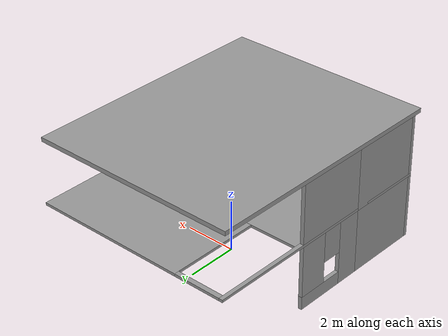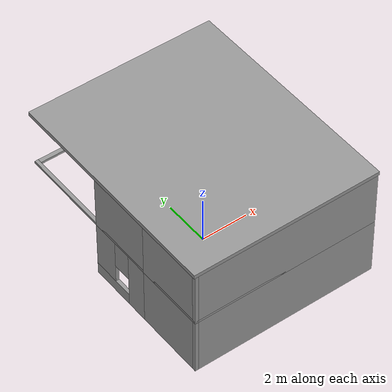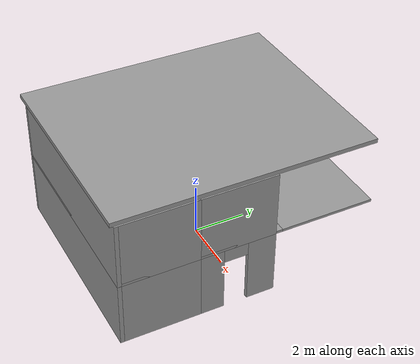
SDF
<sdf version="1.6">
 <model name="testbuilding">
  <link name="Floor_0">
   <pose>0 0 2.5 0 -0 0</pose>
   <visual name="Floor_0_Visual_0">
    <pose>-3.92368 0 0.05 0 -0 0</pose>
    <geometry><box><size>0.152649 9.7 0.1</size></box></geometry>
    <material>
     <script><uri>file://media/materials/scripts/gazebo.material</uri><name>Gazebo/Grey</name></script>
     <ambient>1 1 1 1</ambient>
    </material>
    <meta><layer>1</layer></meta>
   </visual>
   <visual name="Floor_0_Visual_1">
    <pose>0.076324 -1.8001 0.05 0 -0 0</pose>
    <geometry><box><size>7.84735 6.0998 0.1</size></box></geometry>
    <material>
     <script><uri>file://media/materials/scripts/gazebo.material</uri><name>Gazebo/Grey</name></script>
     <ambient>1 1 1 1</ambient>
    </material>
    <meta><layer>1</layer></meta>
   </visual>
   <visual name="Floor_0_Visual_2">
    <pose>1.00217 3.0499 0.05 0 -0 0</pose>
    <geometry><box><size>5.99566 3.6002 0.1</size></box></geometry>
    <material>
     <script><uri>file://media/materials/scripts/gazebo.material</uri><name>Gazebo/Grey</name></script>
     <ambient>1 1 1 1</ambient>
    </material>
    <meta><layer>1</layer></meta>
   </visual>
   <visual name="Floor_0_Visual_3">
    <pose>-2.92151 4.75618 0.05 0 -0 0</pose>
    <geometry><box><size>1.85169 0.187632 0.1</size></box></geometry>
    <material>
     <script><uri>file://media/materials/scripts/gazebo.material</uri><name>Gazebo/Grey</name></script>
     <ambient>1 1 1 1</ambient>
    </material>
    <meta><layer>1</layer></meta>
   </visual>
   <collision name="Floor_0_Collision_0">
    <pose>-3.92368 0 0.05 0 -0 0</pose>
    <geometry><box><size>0.152649 9.7 0.1</size></box></geometry>
    <surface>
     <friction>
      <ode><mu>1</mu><mu2>1</mu2><fdir1>0 0 0</fdir1><slip1>0</slip1><slip2>0</slip2></ode>
      <torsional>
       <coefficient>1</coefficient>
       <patch_radius>0</patch_radius>
       <surface_radius>0</surface_radius>
       <use_patch_radius>1</use_patch_radius>
       <ode><slip>0</slip></ode>
      </torsional>
     </friction>
     <bounce><restitution_coefficient>0</restitution_coefficient><threshold>1e+06</threshold></bounce>
     <contact>
      <collide_without_contact>0</collide_without_contact>
      <collide_without_contact_bitmask>1</collide_without_contact_bitmask>
      <collide_bitmask>1</collide_bitmask>
      <ode>
       <soft_cfm>0</soft_cfm>
       <soft_erp>0.2</soft_erp>
       <kp>1e+13</kp>
       <kd>1</kd>
       <max_vel>0.01</max_vel>
       <min_depth>0</min_depth>
      </ode>
      <bullet>
       <split_impulse>1</split_impulse>
       <split_impulse_penetration_threshold>-0.01</split_impulse_penetration_threshold>
       <soft_cfm>0</soft_cfm>
       <soft_erp>0.2</soft_erp>
       <kp>1e+13</kp>
       <kd>1</kd>
      </bullet>
     </contact>
    </surface>
   </collision>
   <collision name="Floor_0_Collision_1">
    <pose>0.076324 -1.8001 0.05 0 -0 0</pose>
    <geometry><box><size>7.84735 6.0998 0.1</size></box></geometry>
    <surface>
     <friction>
      <ode><mu>1</mu><mu2>1</mu2><fdir1>0 0 0</fdir1><slip1>0</slip1><slip2>0</slip2></ode>
      <torsional>
       <coefficient>1</coefficient>
       <patch_radius>0</patch_radius>
       <surface_radius>0</surface_radius>
       <use_patch_radius>1</use_patch_radius>
       <ode><slip>0</slip></ode>
      </torsional>
     </friction>
     <bounce><restitution_coefficient>0</restitution_coefficient><threshold>1e+06</threshold></bounce>
     <contact>
      <collide_without_contact>0</collide_without_contact>
      <collide_without_contact_bitmask>1</collide_without_contact_bitmask>
      <collide_bitmask>1</collide_bitmask>
      <ode>
       <soft_cfm>0</soft_cfm>
       <soft_erp>0.2</soft_erp>
       <kp>1e+13</kp>
       <kd>1</kd>
       <max_vel>0.01</max_vel>
       <min_depth>0</min_depth>
      </ode>
      <bullet>
       <split_impulse>1</split_impulse>
       <split_impulse_penetration_threshold>-0.01</split_impulse_penetration_threshold>
       <soft_cfm>0</soft_cfm>
       <soft_erp>0.2</soft_erp>
       <kp>1e+13</kp>
       <kd>1</kd>
      </bullet>
     </contact>
    </surface>
   </collision>
   <collision name="Floor_0_Collision_2">
    <pose>1.00217 3.0499 0.05 0 -0 0</pose>
    <geometry><box><size>5.99566 3.6002 0.1</size></box></geometry>
    <surface>
     <friction>
      <ode><mu>1</mu><mu2>1</mu2><fdir1>0 0 0</fdir1><slip1>0</slip1><slip2>0</slip2></ode>
      <torsional>
       <coefficient>1</coefficient>
       <patch_radius>0</patch_radius>
       <surface_radius>0</surface_radius>
       <use_patch_radius>1</use_patch_radius>
       <ode><slip>0</slip></ode>
      </torsional>
     </friction>
     <bounce><restitution_coefficient>0</restitution_coefficient><threshold>1e+06</threshold></bounce>
     <contact>
      <collide_without_contact>0</collide_without_contact>
      <collide_without_contact_bitmask>1</collide_without_contact_bitmask>
      <collide_bitmask>1</collide_bitmask>
      <ode>
       <soft_cfm>0</soft_cfm>
       <soft_erp>0.2</soft_erp>
       <kp>1e+13</kp>
       <kd>1</kd>
       <max_vel>0.01</max_vel>
       <min_depth>0</min_depth>
      </ode>
      <bullet>
       <split_impulse>1</split_impulse>
       <split_impulse_penetration_threshold>-0.01</split_impulse_penetration_threshold>
       <soft_cfm>0</soft_cfm>
       <soft_erp>0.2</soft_erp>
       <kp>1e+13</kp>
       <kd>1</kd>
      </bullet>
     </contact>
    </surface>
   </collision>
   <collision name="Floor_0_Collision_3">
    <pose>-2.92151 4.75618 0.05 0 -0 0</pose>
    <geometry><box><size>1.85169 0.187632 0.1</size></box></geometry>
    <surface>
     <friction>
      <ode><mu>1</mu><mu2>1</mu2><fdir1>0 0 0</fdir1><slip1>0</slip1><slip2>0</slip2></ode>
      <torsional>
       <coefficient>1</coefficient>
       <patch_radius>0</patch_radius>
       <surface_radius>0</surface_radius>
       <use_patch_radius>1</use_patch_radius>
       <ode><slip>0</slip></ode>
      </torsional>
     </friction>
     <bounce><restitution_coefficient>0</restitution_coefficient><threshold>1e+06</threshold></bounce>
     <contact>
      <collide_without_contact>0</collide_without_contact>
      <collide_without_contact_bitmask>1</collide_without_contact_bitmask>
      <collide_bitmask>1</collide_bitmask>
      <ode>
       <soft_cfm>0</soft_cfm>
       <soft_erp>0.2</soft_erp>
       <kp>1e+13</kp>
       <kd>1</kd>
       <max_vel>0.01</max_vel>
       <min_depth>0</min_depth>
      </ode>
      <bullet>
       <split_impulse>1</split_impulse>
       <split_impulse_penetration_threshold>-0.01</split_impulse_penetration_threshold>
       <soft_cfm>0</soft_cfm>
       <soft_erp>0.2</soft_erp>
       <kp>1e+13</kp>
       <kd>1</kd>
      </bullet>
     </contact>
    </surface>
   </collision>
  </link>
  <link name="Wall_1">
   <pose>3.925 -0.5 0 0 0 -1.5708</pose>
   <visual name="Wall_1_Visual_0">
    <pose>-0.962843 0 1.25 0 -0 0</pose>
    <geometry><box><size>1.07431 0.15 2.5</size></box></geometry>
    <material>
     <script><uri>file://media/materials/scripts/gazebo.material</uri><name>Gazebo/Grey</name></script>
     <ambient>1 1 1 1</ambient>
    </material>
    <meta><layer>0</layer></meta>
   </visual>
   <visual name="Wall_1_Visual_1">
    <pose>0.987157 0 1.25 0 -0 0</pose>
    <geometry><box><size>1.02569 0.15 2.5</size></box></geometry>
    <material>
     <script><uri>file://media/materials/scripts/gazebo.material</uri><name>Gazebo/Grey</name></script>
     <ambient>1 1 1 1</ambient>
    </material>
    <meta><layer>0</layer></meta>
   </visual>
   <visual name="Wall_1_Visual_2">
    <pose>0.024314 0 2.25 0 -0 0</pose>
    <geometry><box><size>0.9 0.15 0.5</size></box></geometry>
    <material>
     <script><uri>file://media/materials/scripts/gazebo.material</uri><name>Gazebo/Grey</name></script>
     <ambient>1 1 1 1</ambient>
    </material>
    <meta><layer>0</layer></meta>
   </visual>
   <collision name="Wall_1_Collision_0">
    <pose>-0.962843 0 1.25 0 -0 0</pose>
    <geometry><box><size>1.07431 0.15 2.5</size></box></geometry>
    <surface>
     <friction>
      <ode><mu>1</mu><mu2>1</mu2><fdir1>0 0 0</fdir1><slip1>0</slip1><slip2>0</slip2></ode>
      <torsional>
       <coefficient>1</coefficient>
       <patch_radius>0</patch_radius>
       <surface_radius>0</surface_radius>
       <use_patch_radius>1</use_patch_radius>
       <ode><slip>0</slip></ode>
      </torsional>
     </friction>
     <bounce><restitution_coefficient>0</restitution_coefficient><threshold>1e+06</threshold></bounce>
     <contact>
      <collide_without_contact>0</collide_without_contact>
      <collide_without_contact_bitmask>1</collide_without_contact_bitmask>
      <collide_bitmask>1</collide_bitmask>
      <ode>
       <soft_cfm>0</soft_cfm>
       <soft_erp>0.2</soft_erp>
       <kp>1e+13</kp>
       <kd>1</kd>
       <max_vel>0.01</max_vel>
       <min_depth>0</min_depth>
      </ode>
      <bullet>
       <split_impulse>1</split_impulse>
       <split_impulse_penetration_threshold>-0.01</split_impulse_penetration_threshold>
       <soft_cfm>0</soft_cfm>
       <soft_erp>0.2</soft_erp>
       <kp>1e+13</kp>
       <kd>1</kd>
      </bullet>
     </contact>
    </surface>
   </collision>
   <collision name="Wall_1_Collision_1">
    <pose>0.987157 0 1.25 0 -0 0</pose>
    <geometry><box><size>1.02569 0.15 2.5</size></box></geometry>
    <surface>
     <friction>
      <ode><mu>1</mu><mu2>1</mu2><fdir1>0 0 0</fdir1><slip1>0</slip1><slip2>0</slip2></ode>
      <torsional>
       <coefficient>1</coefficient>
       <patch_radius>0</patch_radius>
       <surface_radius>0</surface_radius>
       <use_patch_radius>1</use_patch_radius>
       <ode><slip>0</slip></ode>
      </torsional>
     </friction>
     <bounce><restitution_coefficient>0</restitution_coefficient><threshold>1e+06</threshold></bounce>
     <contact>
      <collide_without_contact>0</collide_without_contact>
      <collide_without_contact_bitmask>1</collide_without_contact_bitmask>
      <collide_bitmask>1</collide_bitmask>
      <ode>
       <soft_cfm>0</soft_cfm>
       <soft_erp>0.2</soft_erp>
       <kp>1e+13</kp>
       <kd>1</kd>
       <max_vel>0.01</max_vel>
       <min_depth>0</min_depth>
      </ode>
      <bullet>
       <split_impulse>1</split_impulse>
       <split_impulse_penetration_threshold>-0.01</split_impulse_penetration_threshold>
       <soft_cfm>0</soft_cfm>
       <soft_erp>0.2</soft_erp>
       <kp>1e+13</kp>
       <kd>1</kd>
      </bullet>
     </contact>
    </surface>
   </collision>
   <collision name="Wall_1_Collision_2">
    <pose>0.024314 0 2.25 0 -0 0</pose>
    <geometry><box><size>0.9 0.15 0.5</size></box></geometry>
    <surface>
     <friction>
      <ode><mu>1</mu><mu2>1</mu2><fdir1>0 0 0</fdir1><slip1>0</slip1><slip2>0</slip2></ode>
      <torsional>
       <coefficient>1</coefficient>
       <patch_radius>0</patch_radius>
       <surface_radius>0</surface_radius>
       <use_patch_radius>1</use_patch_radius>
       <ode><slip>0</slip></ode>
      </torsional>
     </friction>
     <bounce><restitution_coefficient>0</restitution_coefficient><threshold>1e+06</threshold></bounce>
     <contact>
      <collide_without_contact>0</collide_without_contact>
      <collide_without_contact_bitmask>1</collide_without_contact_bitmask>
      <collide_bitmask>1</collide_bitmask>
      <ode>
       <soft_cfm>0</soft_cfm>
       <soft_erp>0.2</soft_erp>
       <kp>1e+13</kp>
       <kd>1</kd>
       <max_vel>0.01</max_vel>
       <min_depth>0</min_depth>
      </ode>
      <bullet>
       <split_impulse>1</split_impulse>
       <split_impulse_penetration_threshold>-0.01</split_impulse_penetration_threshold>
       <soft_cfm>0</soft_cfm>
       <soft_erp>0.2</soft_erp>
       <kp>1e+13</kp>
       <kd>1</kd>
      </bullet>
     </contact>
    </surface>
   </collision>
  </link>
  <link name="Wall_17">
   <pose>3.925 -3.35 0 0 0 -1.5708</pose>
   <visual name="Wall_17_Visual">
    <pose>0 0 1.25 0 -0 0</pose>
    <geometry><box><size>3 0.15 2.5</size></box></geometry>
    <material>
     <script><uri>file://media/materials/scripts/gazebo.material</uri><name>Gazebo/Grey</name></script>
     <ambient>1 1 1 1</ambient>
    </material>
    <meta><layer>0</layer></meta>
   </visual>
   <collision name="Wall_17_Collision">
    <pose>0 0 1.25 0 -0 0</pose>
    <geometry><box><size>3 0.15 2.5</size></box></geometry>
    <surface>
     <friction>
      <ode><mu>1</mu><mu2>1</mu2><fdir1>0 0 0</fdir1><slip1>0</slip1><slip2>0</slip2></ode>
      <torsional>
       <coefficient>1</coefficient>
       <patch_radius>0</patch_radius>
       <surface_radius>0</surface_radius>
       <use_patch_radius>1</use_patch_radius>
       <ode><slip>0</slip></ode>
      </torsional>
     </friction>
     <bounce><restitution_coefficient>0</restitution_coefficient><threshold>1e+06</threshold></bounce>
     <contact>
      <collide_without_contact>0</collide_without_contact>
      <collide_without_contact_bitmask>1</collide_without_contact_bitmask>
      <collide_bitmask>1</collide_bitmask>
      <ode>
       <soft_cfm>0</soft_cfm>
       <soft_erp>0.2</soft_erp>
       <kp>1e+13</kp>
       <kd>1</kd>
       <max_vel>0.01</max_vel>
       <min_depth>0</min_depth>
      </ode>
      <bullet>
       <split_impulse>1</split_impulse>
       <split_impulse_penetration_threshold>-0.01</split_impulse_penetration_threshold>
       <soft_cfm>0</soft_cfm>
       <soft_erp>0.2</soft_erp>
       <kp>1e+13</kp>
       <kd>1</kd>
      </bullet>
     </contact>
    </surface>
   </collision>
  </link>
  <link name="Wall_18">
   <pose>0 -4.775 0 0 -0 3.14159</pose>
   <visual name="Wall_18_Visual">
    <pose>0 0 1.25 0 -0 0</pose>
    <geometry><box><size>8 0.15 2.5</size></box></geometry>
    <material>
     <script><uri>file://media/materials/scripts/gazebo.material</uri><name>Gazebo/Grey</name></script>
     <ambient>1 1 1 1</ambient>
    </material>
    <meta><layer>0</layer></meta>
   </visual>
   <collision name="Wall_18_Collision">
    <pose>0 0 1.25 0 -0 0</pose>
    <geometry><box><size>8 0.15 2.5</size></box></geometry>
    <surface>
     <friction>
      <ode><mu>1</mu><mu2>1</mu2><fdir1>0 0 0</fdir1><slip1>0</slip1><slip2>0</slip2></ode>
      <torsional>
       <coefficient>1</coefficient>
       <patch_radius>0</patch_radius>
       <surface_radius>0</surface_radius>
       <use_patch_radius>1</use_patch_radius>
       <ode><slip>0</slip></ode>
      </torsional>
     </friction>
     <bounce><restitution_coefficient>0</restitution_coefficient><threshold>1e+06</threshold></bounce>
     <contact>
      <collide_without_contact>0</collide_without_contact>
      <collide_without_contact_bitmask>1</collide_without_contact_bitmask>
      <collide_bitmask>1</collide_bitmask>
      <ode>
       <soft_cfm>0</soft_cfm>
       <soft_erp>0.2</soft_erp>
       <kp>1e+13</kp>
       <kd>1</kd>
       <max_vel>0.01</max_vel>
       <min_depth>0</min_depth>
      </ode>
      <bullet>
       <split_impulse>1</split_impulse>
       <split_impulse_penetration_threshold>-0.01</split_impulse_penetration_threshold>
       <soft_cfm>0</soft_cfm>
       <soft_erp>0.2</soft_erp>
       <kp>1e+13</kp>
       <kd>1</kd>
      </bullet>
     </contact>
    </surface>
   </collision>
  </link>
  <link name="Wall_19">
   <pose>-3.925 -3.35 0 0 -0 1.5708</pose>
   <visual name="Wall_19_Visual">
    <pose>0 0 1.25 0 -0 0</pose>
    <geometry><box><size>3 0.15 2.5</size></box></geometry>
    <material>
     <script><uri>file://media/materials/scripts/gazebo.material</uri><name>Gazebo/Grey</name></script>
     <ambient>1 1 1 1</ambient>
    </material>
    <meta><layer>0</layer></meta>
   </visual>
   <collision name="Wall_19_Collision">
    <pose>0 0 1.25 0 -0 0</pose>
    <geometry><box><size>3 0.15 2.5</size></box></geometry>
    <surface>
     <friction>
      <ode><mu>1</mu><mu2>1</mu2><fdir1>0 0 0</fdir1><slip1>0</slip1><slip2>0</slip2></ode>
      <torsional>
       <coefficient>1</coefficient>
       <patch_radius>0</patch_radius>
       <surface_radius>0</surface_radius>
       <use_patch_radius>1</use_patch_radius>
       <ode><slip>0</slip></ode>
      </torsional>
     </friction>
     <bounce><restitution_coefficient>0</restitution_coefficient><threshold>1e+06</threshold></bounce>
     <contact>
      <collide_without_contact>0</collide_without_contact>
      <collide_without_contact_bitmask>1</collide_without_contact_bitmask>
      <collide_bitmask>1</collide_bitmask>
      <ode>
       <soft_cfm>0</soft_cfm>
       <soft_erp>0.2</soft_erp>
       <kp>1e+13</kp>
       <kd>1</kd>
       <max_vel>0.01</max_vel>
       <min_depth>0</min_depth>
      </ode>
      <bullet>
       <split_impulse>1</split_impulse>
       <split_impulse_penetration_threshold>-0.01</split_impulse_penetration_threshold>
       <soft_cfm>0</soft_cfm>
       <soft_erp>0.2</soft_erp>
       <kp>1e+13</kp>
       <kd>1</kd>
      </bullet>
     </contact>
    </surface>
   </collision>
  </link>
  <link name="Wall_2">
   <pose>0 -1.925 0 0 -0 3.14159</pose>
   <visual name="Wall_2_Visual_0">
    <pose>-0.699968 0 1.25 0 -0 0</pose>
    <geometry><box><size>6.60006 0.15 2.5</size></box></geometry>
    <material>
     <script><uri>file://media/materials/scripts/gazebo.material</uri><name>Gazebo/Grey</name></script>
     <ambient>1 1 1 1</ambient>
    </material>
    <meta><layer>0</layer></meta>
   </visual>
   <visual name="Wall_2_Visual_1">
    <pose>3.75003 0 1.25 0 -0 0</pose>
    <geometry><box><size>0.499937 0.15 2.5</size></box></geometry>
    <material>
     <script><uri>file://media/materials/scripts/gazebo.material</uri><name>Gazebo/Grey</name></script>
     <ambient>1 1 1 1</ambient>
    </material>
    <meta><layer>0</layer></meta>
   </visual>
   <visual name="Wall_2_Visual_2">
    <pose>3.05006 0 2.25 0 -0 0</pose>
    <geometry><box><size>0.9 0.15 0.5</size></box></geometry>
    <material>
     <script><uri>file://media/materials/scripts/gazebo.material</uri><name>Gazebo/Grey</name></script>
     <ambient>1 1 1 1</ambient>
    </material>
    <meta><layer>0</layer></meta>
   </visual>
   <collision name="Wall_2_Collision_0">
    <pose>-0.699968 0 1.25 0 -0 0</pose>
    <geometry><box><size>6.60006 0.15 2.5</size></box></geometry>
    <surface>
     <friction>
      <ode><mu>1</mu><mu2>1</mu2><fdir1>0 0 0</fdir1><slip1>0</slip1><slip2>0</slip2></ode>
      <torsional>
       <coefficient>1</coefficient>
       <patch_radius>0</patch_radius>
       <surface_radius>0</surface_radius>
       <use_patch_radius>1</use_patch_radius>
       <ode><slip>0</slip></ode>
      </torsional>
     </friction>
     <bounce><restitution_coefficient>0</restitution_coefficient><threshold>1e+06</threshold></bounce>
     <contact>
      <collide_without_contact>0</collide_without_contact>
      <collide_without_contact_bitmask>1</collide_without_contact_bitmask>
      <collide_bitmask>1</collide_bitmask>
      <ode>
       <soft_cfm>0</soft_cfm>
       <soft_erp>0.2</soft_erp>
       <kp>1e+13</kp>
       <kd>1</kd>
       <max_vel>0.01</max_vel>
       <min_depth>0</min_depth>
      </ode>
      <bullet>
       <split_impulse>1</split_impulse>
       <split_impulse_penetration_threshold>-0.01</split_impulse_penetration_threshold>
       <soft_cfm>0</soft_cfm>
       <soft_erp>0.2</soft_erp>
       <kp>1e+13</kp>
       <kd>1</kd>
      </bullet>
     </contact>
    </surface>
   </collision>
   <collision name="Wall_2_Collision_1">
    <pose>3.75003 0 1.25 0 -0 0</pose>
    <geometry><box><size>0.499937 0.15 2.5</size></box></geometry>
    <surface>
     <friction>
      <ode><mu>1</mu><mu2>1</mu2><fdir1>0 0 0</fdir1><slip1>0</slip1><slip2>0</slip2></ode>
      <torsional>
       <coefficient>1</coefficient>
       <patch_radius>0</patch_radius>
       <surface_radius>0</surface_radius>
       <use_patch_radius>1</use_patch_radius>
       <ode><slip>0</slip></ode>
      </torsional>
     </friction>
     <bounce><restitution_coefficient>0</restitution_coefficient><threshold>1e+06</threshold></bounce>
     <contact>
      <collide_without_contact>0</collide_without_contact>
      <collide_without_contact_bitmask>1</collide_without_contact_bitmask>
      <collide_bitmask>1</collide_bitmask>
      <ode>
       <soft_cfm>0</soft_cfm>
       <soft_erp>0.2</soft_erp>
       <kp>1e+13</kp>
       <kd>1</kd>
       <max_vel>0.01</max_vel>
       <min_depth>0</min_depth>
      </ode>
      <bullet>
       <split_impulse>1</split_impulse>
       <split_impulse_penetration_threshold>-0.01</split_impulse_penetration_threshold>
       <soft_cfm>0</soft_cfm>
       <soft_erp>0.2</soft_erp>
       <kp>1e+13</kp>
       <kd>1</kd>
      </bullet>
     </contact>
    </surface>
   </collision>
   <collision name="Wall_2_Collision_2">
    <pose>3.05006 0 2.25 0 -0 0</pose>
    <geometry><box><size>0.9 0.15 0.5</size></box></geometry>
    <surface>
     <friction>
      <ode><mu>1</mu><mu2>1</mu2><fdir1>0 0 0</fdir1><slip1>0</slip1><slip2>0</slip2></ode>
      <torsional>
       <coefficient>1</coefficient>
       <patch_radius>0</patch_radius>
       <surface_radius>0</surface_radius>
       <use_patch_radius>1</use_patch_radius>
       <ode><slip>0</slip></ode>
      </torsional>
     </friction>
     <bounce><restitution_coefficient>0</restitution_coefficient><threshold>1e+06</threshold></bounce>
     <contact>
      <collide_without_contact>0</collide_without_contact>
      <collide_without_contact_bitmask>1</collide_without_contact_bitmask>
      <collide_bitmask>1</collide_bitmask>
      <ode>
       <soft_cfm>0</soft_cfm>
       <soft_erp>0.2</soft_erp>
       <kp>1e+13</kp>
       <kd>1</kd>
       <max_vel>0.01</max_vel>
       <min_depth>0</min_depth>
      </ode>
      <bullet>
       <split_impulse>1</split_impulse>
       <split_impulse_penetration_threshold>-0.01</split_impulse_penetration_threshold>
       <soft_cfm>0</soft_cfm>
       <soft_erp>0.2</soft_erp>
       <kp>1e+13</kp>
       <kd>1</kd>
      </bullet>
     </contact>
    </surface>
   </collision>
  </link>
  <link name="Wall_22">
   <pose>3.925 -0.5 2.5 0 0 -1.5708</pose>
   <visual name="Wall_22_Visual">
    <pose>0 0 1.25 0 -0 0</pose>
    <geometry><box><size>3 0.15 2.5</size></box></geometry>
    <material>
     <script><uri>file://media/materials/scripts/gazebo.material</uri><name>Gazebo/Grey</name></script>
     <ambient>1 1 1 1</ambient>
    </material>
    <meta><layer>1</layer></meta>
   </visual>
   <collision name="Wall_22_Collision">
    <pose>0 0 1.25 0 -0 0</pose>
    <geometry><box><size>3 0.15 2.5</size></box></geometry>
    <surface>
     <friction>
      <ode><mu>1</mu><mu2>1</mu2><fdir1>0 0 0</fdir1><slip1>0</slip1><slip2>0</slip2></ode>
      <torsional>
       <coefficient>1</coefficient>
       <patch_radius>0</patch_radius>
       <surface_radius>0</surface_radius>
       <use_patch_radius>1</use_patch_radius>
       <ode><slip>0</slip></ode>
      </torsional>
     </friction>
     <bounce><restitution_coefficient>0</restitution_coefficient><threshold>1e+06</threshold></bounce>
     <contact>
      <collide_without_contact>0</collide_without_contact>
      <collide_without_contact_bitmask>1</collide_without_contact_bitmask>
      <collide_bitmask>1</collide_bitmask>
      <ode>
       <soft_cfm>0</soft_cfm>
       <soft_erp>0.2</soft_erp>
       <kp>1e+13</kp>
       <kd>1</kd>
       <max_vel>0.01</max_vel>
       <min_depth>0</min_depth>
      </ode>
      <bullet>
       <split_impulse>1</split_impulse>
       <split_impulse_penetration_threshold>-0.01</split_impulse_penetration_threshold>
       <soft_cfm>0</soft_cfm>
       <soft_erp>0.2</soft_erp>
       <kp>1e+13</kp>
       <kd>1</kd>
      </bullet>
     </contact>
    </surface>
   </collision>
  </link>
  <link name="Wall_24">
   <pose>-3.925 -0.5 2.5 0 -0 1.5708</pose>
   <visual name="Wall_24_Visual">
    <pose>0 0 1.25 0 -0 0</pose>
    <geometry><box><size>3 0.15 2.5</size></box></geometry>
    <material>
     <script><uri>file://media/materials/scripts/gazebo.material</uri><name>Gazebo/Grey</name></script>
     <ambient>1 1 1 1</ambient>
    </material>
    <meta><layer>1</layer></meta>
   </visual>
   <collision name="Wall_24_Collision">
    <pose>0 0 1.25 0 -0 0</pose>
    <geometry><box><size>3 0.15 2.5</size></box></geometry>
    <surface>
     <friction>
      <ode><mu>1</mu><mu2>1</mu2><fdir1>0 0 0</fdir1><slip1>0</slip1><slip2>0</slip2></ode>
      <torsional>
       <coefficient>1</coefficient>
       <patch_radius>0</patch_radius>
       <surface_radius>0</surface_radius>
       <use_patch_radius>1</use_patch_radius>
       <ode><slip>0</slip></ode>
      </torsional>
     </friction>
     <bounce><restitution_coefficient>0</restitution_coefficient><threshold>1e+06</threshold></bounce>
     <contact>
      <collide_without_contact>0</collide_without_contact>
      <collide_without_contact_bitmask>1</collide_without_contact_bitmask>
      <collide_bitmask>1</collide_bitmask>
      <ode>
       <soft_cfm>0</soft_cfm>
       <soft_erp>0.2</soft_erp>
       <kp>1e+13</kp>
       <kd>1</kd>
       <max_vel>0.01</max_vel>
       <min_depth>0</min_depth>
      </ode>
      <bullet>
       <split_impulse>1</split_impulse>
       <split_impulse_penetration_threshold>-0.01</split_impulse_penetration_threshold>
       <soft_cfm>0</soft_cfm>
       <soft_erp>0.2</soft_erp>
       <kp>1e+13</kp>
       <kd>1</kd>
      </bullet>
     </contact>
    </surface>
   </collision>
  </link>
  <link name="Wall_3">
   <pose>-3.925 -0.5 0 0 -0 1.5708</pose>
   <visual name="Wall_3_Visual_0">
    <pose>-0.9625 0 1.25 0 -0 0</pose>
    <geometry><box><size>1.075 0.15 2.5</size></box></geometry>
    <material>
     <script><uri>file://media/materials/scripts/gazebo.material</uri><name>Gazebo/Grey</name></script>
     <ambient>1 1 1 1</ambient>
    </material>
    <meta><layer>0</layer></meta>
   </visual>
   <visual name="Wall_3_Visual_1">
    <pose>0.5375 0 0.25 0 -0 0</pose>
    <geometry><box><size>1.925 0.15 0.5</size></box></geometry>
    <material>
     <script><uri>file://media/materials/scripts/gazebo.material</uri><name>Gazebo/Grey</name></script>
     <ambient>1 1 1 1</ambient>
    </material>
    <meta><layer>0</layer></meta>
   </visual>
   <visual name="Wall_3_Visual_2">
    <pose>0.9375 0 1.5 0 -0 0</pose>
    <geometry><box><size>1.125 0.15 2</size></box></geometry>
    <material>
     <script><uri>file://media/materials/scripts/gazebo.material</uri><name>Gazebo/Grey</name></script>
     <ambient>1 1 1 1</ambient>
    </material>
    <meta><layer>0</layer></meta>
   </visual>
   <visual name="Wall_3_Visual_3">
    <pose>-0.025 0 1.9 0 -0 0</pose>
    <geometry><box><size>0.8 0.15 1.2</size></box></geometry>
    <material>
     <script><uri>file://media/materials/scripts/gazebo.material</uri><name>Gazebo/Grey</name></script>
     <ambient>1 1 1 1</ambient>
    </material>
    <meta><layer>0</layer></meta>
   </visual>
   <collision name="Wall_3_Collision_0">
    <pose>-0.9625 0 1.25 0 -0 0</pose>
    <geometry><box><size>1.075 0.15 2.5</size></box></geometry>
    <surface>
     <friction>
      <ode><mu>1</mu><mu2>1</mu2><fdir1>0 0 0</fdir1><slip1>0</slip1><slip2>0</slip2></ode>
      <torsional>
       <coefficient>1</coefficient>
       <patch_radius>0</patch_radius>
       <surface_radius>0</surface_radius>
       <use_patch_radius>1</use_patch_radius>
       <ode><slip>0</slip></ode>
      </torsional>
     </friction>
     <bounce><restitution_coefficient>0</restitution_coefficient><threshold>1e+06</threshold></bounce>
     <contact>
      <collide_without_contact>0</collide_without_contact>
      <collide_without_contact_bitmask>1</collide_without_contact_bitmask>
      <collide_bitmask>1</collide_bitmask>
      <ode>
       <soft_cfm>0</soft_cfm>
       <soft_erp>0.2</soft_erp>
       <kp>1e+13</kp>
       <kd>1</kd>
       <max_vel>0.01</max_vel>
       <min_depth>0</min_depth>
      </ode>
      <bullet>
       <split_impulse>1</split_impulse>
       <split_impulse_penetration_threshold>-0.01</split_impulse_penetration_threshold>
       <soft_cfm>0</soft_cfm>
       <soft_erp>0.2</soft_erp>
       <kp>1e+13</kp>
       <kd>1</kd>
      </bullet>
     </contact>
    </surface>
   </collision>
   <collision name="Wall_3_Collision_1">
    <pose>0.5375 0 0.25 0 -0 0</pose>
    <geometry><box><size>1.925 0.15 0.5</size></box></geometry>
    <surface>
     <friction>
      <ode><mu>1</mu><mu2>1</mu2><fdir1>0 0 0</fdir1><slip1>0</slip1><slip2>0</slip2></ode>
      <torsional>
       <coefficient>1</coefficient>
       <patch_radius>0</patch_radius>
       <surface_radius>0</surface_radius>
       <use_patch_radius>1</use_patch_radius>
       <ode><slip>0</slip></ode>
      </torsional>
     </friction>
     <bounce><restitution_coefficient>0</restitution_coefficient><threshold>1e+06</threshold></bounce>
     <contact>
      <collide_without_contact>0</collide_without_contact>
      <collide_without_contact_bitmask>1</collide_without_contact_bitmask>
      <collide_bitmask>1</collide_bitmask>
      <ode>
       <soft_cfm>0</soft_cfm>
       <soft_erp>0.2</soft_erp>
       <kp>1e+13</kp>
       <kd>1</kd>
       <max_vel>0.01</max_vel>
       <min_depth>0</min_depth>
      </ode>
      <bullet>
       <split_impulse>1</split_impulse>
       <split_impulse_penetration_threshold>-0.01</split_impulse_penetration_threshold>
       <soft_cfm>0</soft_cfm>
       <soft_erp>0.2</soft_erp>
       <kp>1e+13</kp>
       <kd>1</kd>
      </bullet>
     </contact>
    </surface>
   </collision>
   <collision name="Wall_3_Collision_2">
    <pose>0.9375 0 1.5 0 -0 0</pose>
    <geometry><box><size>1.125 0.15 2</size></box></geometry>
    <surface>
     <friction>
      <ode><mu>1</mu><mu2>1</mu2><fdir1>0 0 0</fdir1><slip1>0</slip1><slip2>0</slip2></ode>
      <torsional>
       <coefficient>1</coefficient>
       <patch_radius>0</patch_radius>
       <surface_radius>0</surface_radius>
       <use_patch_radius>1</use_patch_radius>
       <ode><slip>0</slip></ode>
      </torsional>
     </friction>
     <bounce><restitution_coefficient>0</restitution_coefficient><threshold>1e+06</threshold></bounce>
     <contact>
      <collide_without_contact>0</collide_without_contact>
      <collide_without_contact_bitmask>1</collide_without_contact_bitmask>
      <collide_bitmask>1</collide_bitmask>
      <ode>
       <soft_cfm>0</soft_cfm>
       <soft_erp>0.2</soft_erp>
       <kp>1e+13</kp>
       <kd>1</kd>
       <max_vel>0.01</max_vel>
       <min_depth>0</min_depth>
      </ode>
      <bullet>
       <split_impulse>1</split_impulse>
       <split_impulse_penetration_threshold>-0.01</split_impulse_penetration_threshold>
       <soft_cfm>0</soft_cfm>
       <soft_erp>0.2</soft_erp>
       <kp>1e+13</kp>
       <kd>1</kd>
      </bullet>
     </contact>
    </surface>
   </collision>
   <collision name="Wall_3_Collision_3">
    <pose>-0.025 0 1.9 0 -0 0</pose>
    <geometry><box><size>0.8 0.15 1.2</size></box></geometry>
    <surface>
     <friction>
      <ode><mu>1</mu><mu2>1</mu2><fdir1>0 0 0</fdir1><slip1>0</slip1><slip2>0</slip2></ode>
      <torsional>
       <coefficient>1</coefficient>
       <patch_radius>0</patch_radius>
       <surface_radius>0</surface_radius>
       <use_patch_radius>1</use_patch_radius>
       <ode><slip>0</slip></ode>
      </torsional>
     </friction>
     <bounce><restitution_coefficient>0</restitution_coefficient><threshold>1e+06</threshold></bounce>
     <contact>
      <collide_without_contact>0</collide_without_contact>
      <collide_without_contact_bitmask>1</collide_without_contact_bitmask>
      <collide_bitmask>1</collide_bitmask>
      <ode>
       <soft_cfm>0</soft_cfm>
       <soft_erp>0.2</soft_erp>
       <kp>1e+13</kp>
       <kd>1</kd>
       <max_vel>0.01</max_vel>
       <min_depth>0</min_depth>
      </ode>
      <bullet>
       <split_impulse>1</split_impulse>
       <split_impulse_penetration_threshold>-0.01</split_impulse_penetration_threshold>
       <soft_cfm>0</soft_cfm>
       <soft_erp>0.2</soft_erp>
       <kp>1e+13</kp>
       <kd>1</kd>
      </bullet>
     </contact>
    </surface>
   </collision>
  </link>
  <link name="Wall_30">
   <pose>3.925 -3.35 2.5 0 0 -1.5708</pose>
   <visual name="Wall_30_Visual">
    <pose>0 0 1.25 0 -0 0</pose>
    <geometry><box><size>3 0.15 2.5</size></box></geometry>
    <material>
     <script><uri>file://media/materials/scripts/gazebo.material</uri><name>Gazebo/Grey</name></script>
     <ambient>1 1 1 1</ambient>
    </material>
    <meta><layer>1</layer></meta>
   </visual>
   <collision name="Wall_30_Collision">
    <pose>0 0 1.25 0 -0 0</pose>
    <geometry><box><size>3 0.15 2.5</size></box></geometry>
    <surface>
     <friction>
      <ode><mu>1</mu><mu2>1</mu2><fdir1>0 0 0</fdir1><slip1>0</slip1><slip2>0</slip2></ode>
      <torsional>
       <coefficient>1</coefficient>
       <patch_radius>0</patch_radius>
       <surface_radius>0</surface_radius>
       <use_patch_radius>1</use_patch_radius>
       <ode><slip>0</slip></ode>
      </torsional>
     </friction>
     <bounce><restitution_coefficient>0</restitution_coefficient><threshold>1e+06</threshold></bounce>
     <contact>
      <collide_without_contact>0</collide_without_contact>
      <collide_without_contact_bitmask>1</collide_without_contact_bitmask>
      <collide_bitmask>1</collide_bitmask>
      <ode>
       <soft_cfm>0</soft_cfm>
       <soft_erp>0.2</soft_erp>
       <kp>1e+13</kp>
       <kd>1</kd>
       <max_vel>0.01</max_vel>
       <min_depth>0</min_depth>
      </ode>
      <bullet>
       <split_impulse>1</split_impulse>
       <split_impulse_penetration_threshold>-0.01</split_impulse_penetration_threshold>
       <soft_cfm>0</soft_cfm>
       <soft_erp>0.2</soft_erp>
       <kp>1e+13</kp>
       <kd>1</kd>
      </bullet>
     </contact>
    </surface>
   </collision>
  </link>
  <link name="Wall_31">
   <pose>0 -4.775 2.5 0 -0 3.14159</pose>
   <visual name="Wall_31_Visual">
    <pose>0 0 1.25 0 -0 0</pose>
    <geometry><box><size>8 0.15 2.5</size></box></geometry>
    <material>
     <script><uri>file://media/materials/scripts/gazebo.material</uri><name>Gazebo/Grey</name></script>
     <ambient>1 1 1 1</ambient>
    </material>
    <meta><layer>1</layer></meta>
   </visual>
   <collision name="Wall_31_Collision">
    <pose>0 0 1.25 0 -0 0</pose>
    <geometry><box><size>8 0.15 2.5</size></box></geometry>
    <surface>
     <friction>
      <ode><mu>1</mu><mu2>1</mu2><fdir1>0 0 0</fdir1><slip1>0</slip1><slip2>0</slip2></ode>
      <torsional>
       <coefficient>1</coefficient>
       <patch_radius>0</patch_radius>
       <surface_radius>0</surface_radius>
       <use_patch_radius>1</use_patch_radius>
       <ode><slip>0</slip></ode>
      </torsional>
     </friction>
     <bounce><restitution_coefficient>0</restitution_coefficient><threshold>1e+06</threshold></bounce>
     <contact>
      <collide_without_contact>0</collide_without_contact>
      <collide_without_contact_bitmask>1</collide_without_contact_bitmask>
      <collide_bitmask>1</collide_bitmask>
      <ode>
       <soft_cfm>0</soft_cfm>
       <soft_erp>0.2</soft_erp>
       <kp>1e+13</kp>
       <kd>1</kd>
       <max_vel>0.01</max_vel>
       <min_depth>0</min_depth>
      </ode>
      <bullet>
       <split_impulse>1</split_impulse>
       <split_impulse_penetration_threshold>-0.01</split_impulse_penetration_threshold>
       <soft_cfm>0</soft_cfm>
       <soft_erp>0.2</soft_erp>
       <kp>1e+13</kp>
       <kd>1</kd>
      </bullet>
     </contact>
    </surface>
   </collision>
  </link>
  <link name="Wall_32">
   <pose>-3.925 -3.35 2.5 0 -0 1.5708</pose>
   <visual name="Wall_32_Visual">
    <pose>0 0 1.25 0 -0 0</pose>
    <geometry><box><size>3 0.15 2.5</size></box></geometry>
    <material>
     <script><uri>file://media/materials/scripts/gazebo.material</uri><name>Gazebo/Grey</name></script>
     <ambient>1 1 1 1</ambient>
    </material>
    <meta><layer>1</layer></meta>
   </visual>
   <collision name="Wall_32_Collision">
    <pose>0 0 1.25 0 -0 0</pose>
    <geometry><box><size>3 0.15 2.5</size></box></geometry>
    <surface>
     <friction>
      <ode><mu>1</mu><mu2>1</mu2><fdir1>0 0 0</fdir1><slip1>0</slip1><slip2>0</slip2></ode>
      <torsional>
       <coefficient>1</coefficient>
       <patch_radius>0</patch_radius>
       <surface_radius>0</surface_radius>
       <use_patch_radius>1</use_patch_radius>
       <ode><slip>0</slip></ode>
      </torsional>
     </friction>
     <bounce><restitution_coefficient>0</restitution_coefficient><threshold>1e+06</threshold></bounce>
     <contact>
      <collide_without_contact>0</collide_without_contact>
      <collide_without_contact_bitmask>1</collide_without_contact_bitmask>
      <collide_bitmask>1</collide_bitmask>
      <ode>
       <soft_cfm>0</soft_cfm>
       <soft_erp>0.2</soft_erp>
       <kp>1e+13</kp>
       <kd>1</kd>
       <max_vel>0.01</max_vel>
       <min_depth>0</min_depth>
      </ode>
      <bullet>
       <split_impulse>1</split_impulse>
       <split_impulse_penetration_threshold>-0.01</split_impulse_penetration_threshold>
       <soft_cfm>0</soft_cfm>
       <soft_erp>0.2</soft_erp>
       <kp>1e+13</kp>
       <kd>1</kd>
      </bullet>
     </contact>
    </surface>
   </collision>
  </link>
  <link name="Wall_37">
   <pose>-0.75 -1.925 2.5 0 -0 0</pose>
   <visual name="Wall_37_Visual">
    <pose>0 0 1.25 0 -0 0</pose>
    <geometry><box><size>6.5 0.15 2.5</size></box></geometry>
    <material>
     <script><uri>file://media/materials/scripts/gazebo.material</uri><name>Gazebo/Grey</name></script>
     <ambient>1 1 1 1</ambient>
    </material>
    <meta><layer>1</layer></meta>
   </visual>
   <collision name="Wall_37_Collision">
    <pose>0 0 1.25 0 -0 0</pose>
    <geometry><box><size>6.5 0.15 2.5</size></box></geometry>
    <surface>
     <friction>
      <ode><mu>1</mu><mu2>1</mu2><fdir1>0 0 0</fdir1><slip1>0</slip1><slip2>0</slip2></ode>
      <torsional>
       <coefficient>1</coefficient>
       <patch_radius>0</patch_radius>
       <surface_radius>0</surface_radius>
       <use_patch_radius>1</use_patch_radius>
       <ode><slip>0</slip></ode>
      </torsional>
     </friction>
     <bounce><restitution_coefficient>0</restitution_coefficient><threshold>1e+06</threshold></bounce>
     <contact>
      <collide_without_contact>0</collide_without_contact>
      <collide_without_contact_bitmask>1</collide_without_contact_bitmask>
      <collide_bitmask>1</collide_bitmask>
      <ode>
       <soft_cfm>0</soft_cfm>
       <soft_erp>0.2</soft_erp>
       <kp>1e+13</kp>
       <kd>1</kd>
       <max_vel>0.01</max_vel>
       <min_depth>0</min_depth>
      </ode>
      <bullet>
       <split_impulse>1</split_impulse>
       <split_impulse_penetration_threshold>-0.01</split_impulse_penetration_threshold>
       <soft_cfm>0</soft_cfm>
       <soft_erp>0.2</soft_erp>
       <kp>1e+13</kp>
       <kd>1</kd>
      </bullet>
     </contact>
    </surface>
   </collision>
  </link>
  <link name="link_0">
   <inertial>
    <mass>12.9403</mass>
    <inertia><ixx>103.852</ixx><ixy>0</ixy><ixz>0</ixz><iyy>70.1611</iyy><iyz>0</iyz><izz>173.955</izz></inertia>
   </inertial>
   <pose>-0.087694 -0.05943 5.08324 0 -0 0</pose>
   <visual name="visual">
    <geometry><box><size>8.06449 9.81215 0.163577</size></box></geometry>
    <material>
     <lighting>1</lighting>
     <script><uri>file://media/materials/scripts/gazebo.material</uri><name>Gazebo/Grey</name></script>
    </material>
   </visual>
   <collision name="collision">
    <geometry><box><size>8.06449 9.81215 0.163577</size></box></geometry>
    <surface>
     <friction>
      <ode><mu>1</mu><mu2>1</mu2><fdir1>0 0 0</fdir1><slip1>0</slip1><slip2>0</slip2></ode>
      <torsional>
       <coefficient>1</coefficient>
       <patch_radius>0</patch_radius>
       <surface_radius>0</surface_radius>
       <use_patch_radius>1</use_patch_radius>
       <ode><slip>0</slip></ode>
      </torsional>
     </friction>
     <bounce><restitution_coefficient>0</restitution_coefficient><threshold>1e+06</threshold></bounce>
     <contact>
      <collide_without_contact>0</collide_without_contact>
      <collide_without_contact_bitmask>1</collide_without_contact_bitmask>
      <collide_bitmask>1</collide_bitmask>
      <ode>
       <soft_cfm>0</soft_cfm>
       <soft_erp>0.2</soft_erp>
       <kp>1e+13</kp>
       <kd>1</kd>
       <max_vel>0.01</max_vel>
       <min_depth>0</min_depth>
      </ode>
      <bullet>
       <split_impulse>1</split_impulse>
       <split_impulse_penetration_threshold>-0.01</split_impulse_penetration_threshold>
       <soft_cfm>0</soft_cfm>
       <soft_erp>0.2</soft_erp>
       <kp>1e+13</kp>
       <kd>1</kd>
      </bullet>
     </contact>
    </surface>
   </collision>
  </link>
  <static>1</static>
 </model>
</sdf>
